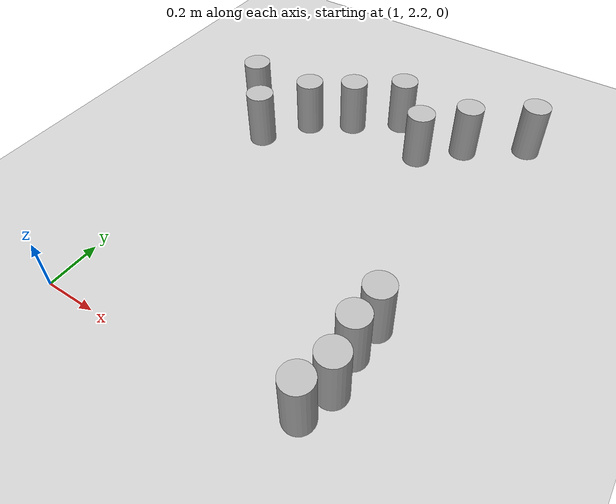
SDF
<sdf version="1.6">
 <world name="default">
  <model name="ground_plane">
   <static>1</static>
   <link name="link">
    <collision name="collision">
     <geometry><plane><normal>0 0 1</normal><size>100 100</size></plane></geometry>
     <surface><friction><ode><mu>100</mu><mu2>50</mu2></ode></friction></surface>
    </collision>
    <visual name="visual">
     <cast_shadows>0</cast_shadows>
     <geometry><plane><normal>0 0 1</normal><size>100 100</size></plane></geometry>
     <material>
      <script><uri>file://media/materials/scripts/gazebo.material</uri><name>Gazebo/Grey</name></script>
     </material>
    </visual>
   </link>
  </model>
  <model name="beer_4_clone">
   <link name="link">
    <pose>0 0 0.115 0 -0 0</pose>
    <inertial>
     <mass>0.01</mass>
     <inertia><ixx>0.00058</ixx><ixy>0</ixy><ixz>0</ixz><iyy>0.00058</iyy><iyz>0</iyz><izz>0.00019</izz></inertia>
    </inertial>
    <collision name="collision">
     <geometry><cylinder><radius>0.055</radius><length>0.23</length></cylinder></geometry>
    </collision>
    <visual name="visual">
     <geometry><cylinder><radius>0.055</radius><length>0.23</length></cylinder></geometry>
     <material>
      <script>
       <uri>model://beer/materials/scripts</uri>
       <uri>model://beer/materials/textures</uri>
       <name>Beer/Diffuse</name>
      </script>
     </material>
    </visual>
   </link>
   <pose>2.10824 3.75984 -7e-06 -1e-06 -0 -1.4e-05</pose>
  </model>
  <model name="beer_4_clone_0">
   <link name="link">
    <pose>0 0 0.115 0 -0 0</pose>
    <inertial>
     <mass>0.01</mass>
     <inertia><ixx>0.00058</ixx><ixy>0</ixy><ixz>0</ixz><iyy>0.00058</iyy><iyz>0</iyz><izz>0.00019</izz></inertia>
    </inertial>
    <collision name="collision">
     <geometry><cylinder><radius>0.055</radius><length>0.23</length></cylinder></geometry>
    </collision>
    <visual name="visual">
     <geometry><cylinder><radius>0.055</radius><length>0.23</length></cylinder></geometry>
     <material>
      <script>
       <uri>model://beer/materials/scripts</uri>
       <uri>model://beer/materials/textures</uri>
       <name>Beer/Diffuse</name>
      </script>
     </material>
    </visual>
   </link>
   <pose>1.8879 3.61216 -2e-06 0 -0 -1.3e-05</pose>
  </model>
  <model name="beer_4_clone_1">
   <link name="link">
    <pose>0 0 0.115 0 -0 0</pose>
    <inertial>
     <mass>0.01</mass>
     <inertia><ixx>0.00058</ixx><ixy>0</ixy><ixz>0</ixz><iyy>0.00058</iyy><iyz>0</iyz><izz>0.00019</izz></inertia>
    </inertial>
    <collision name="collision">
     <geometry><cylinder><radius>0.055</radius><length>0.23</length></cylinder></geometry>
    </collision>
    <visual name="visual">
     <geometry><cylinder><radius>0.055</radius><length>0.23</length></cylinder></geometry>
     <material>
      <script>
       <uri>model://beer/materials/scripts</uri>
       <uri>model://beer/materials/textures</uri>
       <name>Beer/Diffuse</name>
      </script>
     </material>
    </visual>
   </link>
   <pose>1.74318 3.46925 -2e-06 0 -0 -1.2e-05</pose>
  </model>
  <model name="beer_4_clone_2">
   <link name="link">
    <pose>0 0 0.115 0 -0 0</pose>
    <inertial>
     <mass>0.01</mass>
     <inertia><ixx>0.00058</ixx><ixy>0</ixy><ixz>0</ixz><iyy>0.00058</iyy><iyz>0</iyz><izz>0.00019</izz></inertia>
    </inertial>
    <collision name="collision">
     <geometry><cylinder><radius>0.055</radius><length>0.23</length></cylinder></geometry>
    </collision>
    <visual name="visual">
     <geometry><cylinder><radius>0.055</radius><length>0.23</length></cylinder></geometry>
     <material>
      <script>
       <uri>model://beer/materials/scripts</uri>
       <uri>model://beer/materials/textures</uri>
       <name>Beer/Diffuse</name>
      </script>
     </material>
    </visual>
   </link>
   <pose>1.58363 3.63428 -7e-06 0 0 -1.1e-05</pose>
  </model>
  <model name="beer_4_clone_3">
   <link name="link">
    <pose>0 0 0.115 0 -0 0</pose>
    <inertial>
     <mass>0.01</mass>
     <inertia><ixx>0.00058</ixx><ixy>0</ixy><ixz>0</ixz><iyy>0.00058</iyy><iyz>0</iyz><izz>0.00019</izz></inertia>
    </inertial>
    <collision name="collision">
     <geometry><cylinder><radius>0.055</radius><length>0.23</length></cylinder></geometry>
    </collision>
    <visual name="visual">
     <geometry><cylinder><radius>0.055</radius><length>0.23</length></cylinder></geometry>
     <material>
      <script>
       <uri>model://beer/materials/scripts</uri>
       <uri>model://beer/materials/textures</uri>
       <name>Beer/Diffuse</name>
      </script>
     </material>
    </visual>
   </link>
   <pose>1.41011 3.51475 -7e-06 -1e-06 0 -1e-05</pose>
  </model>
  <model name="beer_4_clone_4">
   <link name="link">
    <pose>0 0 0.115 0 -0 0</pose>
    <inertial>
     <mass>0.01</mass>
     <inertia><ixx>0.00058</ixx><ixy>0</ixy><ixz>0</ixz><iyy>0.00058</iyy><iyz>0</iyz><izz>0.00019</izz></inertia>
    </inertial>
    <collision name="collision">
     <geometry><cylinder><radius>0.055</radius><length>0.23</length></cylinder></geometry>
    </collision>
    <visual name="visual">
     <geometry><cylinder><radius>0.055</radius><length>0.23</length></cylinder></geometry>
     <material>
      <script>
       <uri>model://beer/materials/scripts</uri>
       <uri>model://beer/materials/textures</uri>
       <name>Beer/Diffuse</name>
      </script>
     </material>
    </visual>
   </link>
   <pose>1.25318 3.41503 -2e-06 1e-06 -0 -9e-06</pose>
  </model>
  <model name="beer_4_clone_5">
   <link name="link">
    <pose>0 0 0.115 0 -0 0</pose>
    <inertial>
     <mass>0.01</mass>
     <inertia><ixx>0.00058</ixx><ixy>0</ixy><ixz>0</ixz><iyy>0.00058</iyy><iyz>0</iyz><izz>0.00019</izz></inertia>
    </inertial>
    <collision name="collision">
     <geometry><cylinder><radius>0.055</radius><length>0.23</length></cylinder></geometry>
    </collision>
    <visual name="visual">
     <geometry><cylinder><radius>0.055</radius><length>0.23</length></cylinder></geometry>
     <material>
      <script>
       <uri>model://beer/materials/scripts</uri>
       <uri>model://beer/materials/textures</uri>
       <name>Beer/Diffuse</name>
      </script>
     </material>
    </visual>
   </link>
   <pose>1.12951 3.23472 -7e-06 -0 -0 -8e-06</pose>
  </model>
  <model name="beer_4_clone_6">
   <link name="link">
    <pose>0 0 0.115 0 -0 0</pose>
    <inertial>
     <mass>0.01</mass>
     <inertia><ixx>0.00058</ixx><ixy>0</ixy><ixz>0</ixz><iyy>0.00058</iyy><iyz>0</iyz><izz>0.00019</izz></inertia>
    </inertial>
    <collision name="collision">
     <geometry><cylinder><radius>0.055</radius><length>0.23</length></cylinder></geometry>
    </collision>
    <visual name="visual">
     <geometry><cylinder><radius>0.055</radius><length>0.23</length></cylinder></geometry>
     <material>
      <script>
       <uri>model://beer/materials/scripts</uri>
       <uri>model://beer/materials/textures</uri>
       <name>Beer/Diffuse</name>
      </script>
     </material>
    </visual>
   </link>
   <pose>0.978681 3.41554 -2e-06 1e-06 0 -8e-06</pose>
  </model>
  <model name="beer_4_clone_7">
   <link name="link">
    <pose>0 0 0.115 0 -0 0</pose>
    <inertial>
     <mass>0.01</mass>
     <inertia><ixx>0.00058</ixx><ixy>0</ixy><ixz>0</ixz><iyy>0.00058</iyy><iyz>0</iyz><izz>0.00019</izz></inertia>
    </inertial>
    <collision name="collision">
     <geometry><cylinder><radius>0.055</radius><length>0.23</length></cylinder></geometry>
    </collision>
    <visual name="visual">
     <geometry><cylinder><radius>0.055</radius><length>0.23</length></cylinder></geometry>
     <material>
      <script>
       <uri>model://beer/materials/scripts</uri>
       <uri>model://beer/materials/textures</uri>
       <name>Beer/Diffuse</name>
      </script>
     </material>
    </visual>
   </link>
   <pose>2.01904 2.64681 -7e-06 -0 -0 -7e-06</pose>
  </model>
  <model name="beer_4_clone_8">
   <link name="link">
    <pose>0 0 0.115 0 -0 0</pose>
    <inertial>
     <mass>0.01</mass>
     <inertia><ixx>0.00058</ixx><ixy>0</ixy><ixz>0</ixz><iyy>0.00058</iyy><iyz>0</iyz><izz>0.00019</izz></inertia>
    </inertial>
    <collision name="collision">
     <geometry><cylinder><radius>0.055</radius><length>0.23</length></cylinder></geometry>
    </collision>
    <visual name="visual">
     <geometry><cylinder><radius>0.055</radius><length>0.23</length></cylinder></geometry>
     <material>
      <script>
       <uri>model://beer/materials/scripts</uri>
       <uri>model://beer/materials/textures</uri>
       <name>Beer/Diffuse</name>
      </script>
     </material>
    </visual>
   </link>
   <pose>2.00769 2.51934 -2e-06 1e-06 -0 -6e-06</pose>
  </model>
  <model name="beer_4_clone_9">
   <link name="link">
    <pose>0 0 0.115 0 -0 0</pose>
    <inertial>
     <mass>0.01</mass>
     <inertia><ixx>0.00058</ixx><ixy>0</ixy><ixz>0</ixz><iyy>0.00058</iyy><iyz>0</iyz><izz>0.00019</izz></inertia>
    </inertial>
    <collision name="collision">
     <geometry><cylinder><radius>0.055</radius><length>0.23</length></cylinder></geometry>
    </collision>
    <visual name="visual">
     <geometry><cylinder><radius>0.055</radius><length>0.23</length></cylinder></geometry>
     <material>
      <script>
       <uri>model://beer/materials/scripts</uri>
       <uri>model://beer/materials/textures</uri>
       <name>Beer/Diffuse</name>
      </script>
     </material>
    </visual>
   </link>
   <pose>2.02281 2.38067 -7e-06 -1e-06 -0 -5e-06</pose>
  </model>
  <model name="beer_4_clone_10">
   <link name="link">
    <pose>0 0 0.115 0 -0 0</pose>
    <inertial>
     <mass>0.01</mass>
     <inertia><ixx>0.00058</ixx><ixy>0</ixy><ixz>0</ixz><iyy>0.00058</iyy><iyz>0</iyz><izz>0.00019</izz></inertia>
    </inertial>
    <collision name="collision">
     <geometry><cylinder><radius>0.055</radius><length>0.23</length></cylinder></geometry>
    </collision>
    <visual name="visual">
     <geometry><cylinder><radius>0.055</radius><length>0.23</length></cylinder></geometry>
     <material>
      <script>
       <uri>model://beer/materials/scripts</uri>
       <uri>model://beer/materials/textures</uri>
       <name>Beer/Diffuse</name>
      </script>
     </material>
    </visual>
   </link>
   <pose>1.98478 2.26337 -7e-06 -0 -0 -4e-06</pose>
  </model>
 </world>
</sdf>
